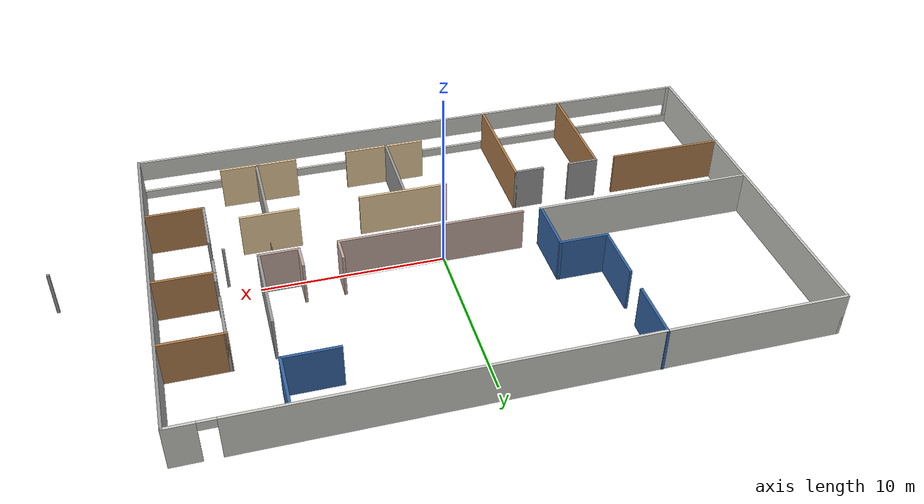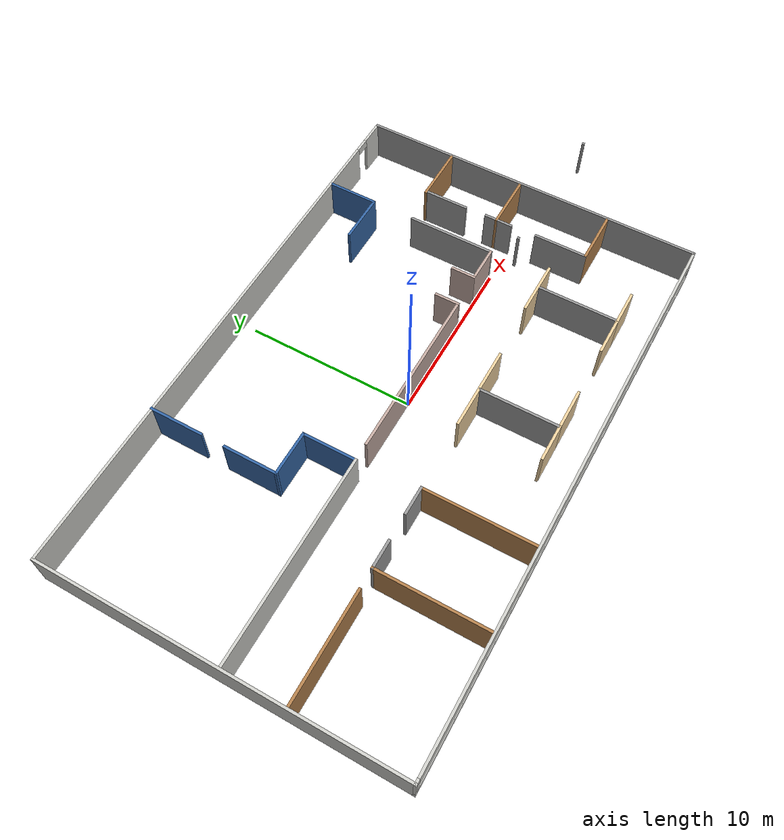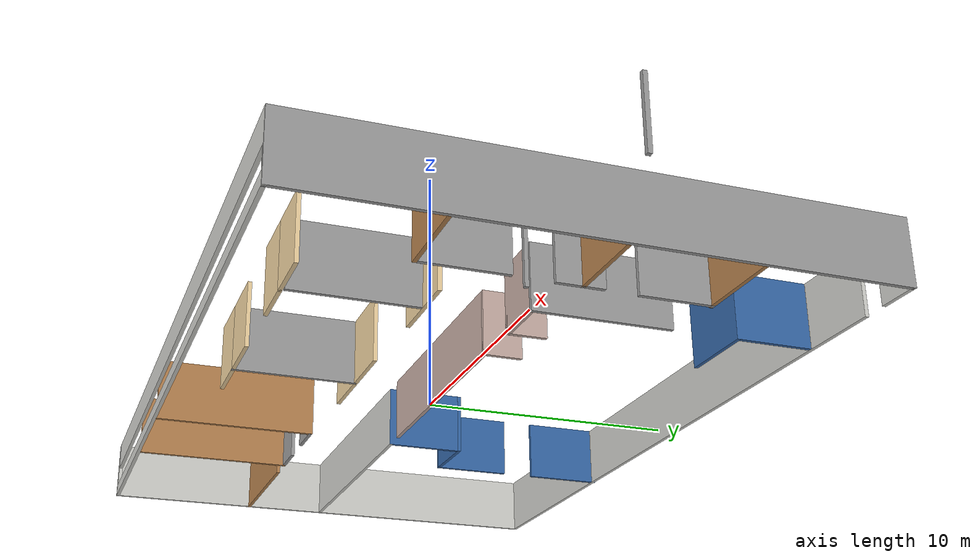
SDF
<?xml version='1.0'?>
<sdf version='1.6'>
  <model name='myworld2'>
    <pose frame=''>1.34917 0.407472 0 0 -0 0</pose>
    <link name='Wall_21'>
      <collision name='Wall_21_Collision'>
        <geometry>
          <box>
            <size>0.15 0.15 2.5</size>
          </box>
        </geometry>
        <pose frame=''>0 0 1.25 0 -0 0</pose>
      </collision>
      <visual name='Wall_21_Visual'>
        <pose frame=''>0 0 1.25 0 -0 0</pose>
        <geometry>
          <box>
            <size>0.15 0.15 2.5</size>
          </box>
        </geometry>
        <material>
          <script>
            <uri>file://media/materials/scripts/gazebo.material</uri>
            <name>Gazebo/Grey</name>
          </script>
          <ambient>1 1 1 1</ambient>
        </material>
        <meta>
          <layer>0</layer>
        </meta>
      </visual>
      <pose frame=''>18.9712 -1.42144 0 0 -0 0</pose>
    </link>
    <link name='Wall_29'>
      <collision name='Wall_29_Collision'>
        <geometry>
          <box>
            <size>0.15 0.15 2.5</size>
          </box>
        </geometry>
        <pose frame=''>0 0 1.25 0 -0 0</pose>
      </collision>
      <visual name='Wall_29_Visual'>
        <pose frame=''>0 0 1.25 0 -0 0</pose>
        <geometry>
          <box>
            <size>0.15 0.15 2.5</size>
          </box>
        </geometry>
        <material>
          <script>
            <uri>file://media/materials/scripts/gazebo.material</uri>
            <name>Gazebo/Grey</name>
          </script>
          <ambient>1 1 1 1</ambient>
        </material>
        <meta>
          <layer>0</layer>
        </meta>
      </visual>
      <pose frame=''>10.2577 -1.19451 0 0 -0 0</pose>
    </link>
    <link name='Wall_32'>
      <pose frame=''>-2.42121 10.4091 0 0 -0 0</pose>
      <visual name='Wall_32_Visual_0'>
        <pose frame=''>-1.23336 0 1.25 0 -0 0</pose>
        <geometry>
          <box>
            <size>30.7833 0.15 2.5</size>
          </box>
        </geometry>
        <material>
          <script>
            <uri>file://media/materials/scripts/gazebo.material</uri>
            <name>Gazebo/CeilingTiled</name>
          </script>
          <ambient>0.203922 0.396078 0.643137 1</ambient>
        </material>
        <meta>
          <layer>0</layer>
        </meta>
      </visual>
      <collision name='Wall_32_Collision_0'>
        <geometry>
          <box>
            <size>30.7833 0.15 2.5</size>
          </box>
        </geometry>
        <pose frame=''>-1.23336 0 1.25 0 -0 0</pose>
      </collision>
      <visual name='Wall_32_Visual_1'>
        <pose frame=''>15.8416 0 1.25 0 -0 0</pose>
        <geometry>
          <box>
            <size>1.56672 0.15 2.5</size>
          </box>
        </geometry>
        <material>
          <script>
            <uri>file://media/materials/scripts/gazebo.material</uri>
            <name>Gazebo/CeilingTiled</name>
          </script>
          <ambient>0.203922 0.396078 0.643137 1</ambient>
        </material>
        <meta>
          <layer>0</layer>
        </meta>
      </visual>
      <collision name='Wall_32_Collision_1'>
        <geometry>
          <box>
            <size>1.56672 0.15 2.5</size>
          </box>
        </geometry>
        <pose frame=''>15.8416 0 1.25 0 -0 0</pose>
      </collision>
      <visual name='Wall_32_Visual_2'>
        <pose frame=''>14.6083 0 2.25 0 -0 0</pose>
        <geometry>
          <box>
            <size>0.9 0.15 0.5</size>
          </box>
        </geometry>
        <material>
          <script>
            <uri>file://media/materials/scripts/gazebo.material</uri>
            <name>Gazebo/CeilingTiled</name>
          </script>
          <ambient>0.203922 0.396078 0.643137 1</ambient>
        </material>
        <meta>
          <layer>0</layer>
        </meta>
      </visual>
      <collision name='Wall_32_Collision_2'>
        <geometry>
          <box>
            <size>0.9 0.15 0.5</size>
          </box>
        </geometry>
        <pose frame=''>14.6083 0 2.25 0 -0 0</pose>
      </collision>
    </link>
    <link name='Wall_33'>
      <collision name='Wall_33_Collision'>
        <geometry>
          <box>
            <size>21 0.15 2.5</size>
          </box>
        </geometry>
        <pose frame=''>0 0 1.25 0 -0 0</pose>
      </collision>
      <visual name='Wall_33_Visual'>
        <pose frame=''>0 0 1.25 0 -0 0</pose>
        <geometry>
          <box>
            <size>21 0.15 2.5</size>
          </box>
        </geometry>
        <material>
          <script>
            <uri>file://media/materials/scripts/gazebo.material</uri>
            <name>Gazebo/Grey</name>
          </script>
          <ambient>1 1 1 1</ambient>
        </material>
        <meta>
          <layer>0</layer>
        </meta>
      </visual>
      <pose frame=''>14.1288 -0.015902 0 0 -0 -1.5708</pose>
    </link>
    <link name='Wall_34'>
      <pose frame=''>-2.42121 -10.4409 0 0 -0 3.14159</pose>
      <visual name='Wall_34_Visual_0'>
        <pose frame=''>-16.5864 0 1.25 0 -0 0</pose>
        <geometry>
          <box>
            <size>0.077133 0.15 2.5</size>
          </box>
        </geometry>
        <material>
          <script>
            <uri>file://media/materials/scripts/gazebo.material</uri>
            <name>Gazebo/CeilingTiled</name>
          </script>
          <ambient>1 1 1 1</ambient>
        </material>
        <meta>
          <layer>0</layer>
        </meta>
      </visual>
      <collision name='Wall_34_Collision_0'>
        <geometry>
          <box>
            <size>0.077133 0.15 2.5</size>
          </box>
        </geometry>
        <pose frame=''>-16.5864 0 1.25 0 -0 0</pose>
      </collision>
      <visual name='Wall_34_Visual_1'>
        <pose frame=''>0.038567 0 0.25 0 -0 0</pose>
        <geometry>
          <box>
            <size>33.1729 0.15 0.5</size>
          </box>
        </geometry>
        <material>
          <script>
            <uri>file://media/materials/scripts/gazebo.material</uri>
            <name>Gazebo/CeilingTiled</name>
          </script>
          <ambient>1 1 1 1</ambient>
        </material>
        <meta>
          <layer>0</layer>
        </meta>
      </visual>
      <collision name='Wall_34_Collision_1'>
        <geometry>
          <box>
            <size>33.1729 0.15 0.5</size>
          </box>
        </geometry>
        <pose frame=''>0.038567 0 0.25 0 -0 0</pose>
      </collision>
      <visual name='Wall_34_Visual_2'>
        <pose frame=''>16.4492 0 1.5 0 -0 0</pose>
        <geometry>
          <box>
            <size>0.35158 0.15 2</size>
          </box>
        </geometry>
        <material>
          <script>
            <uri>file://media/materials/scripts/gazebo.material</uri>
            <name>Gazebo/CeilingTiled</name>
          </script>
          <ambient>1 1 1 1</ambient>
        </material>
        <meta>
          <layer>0</layer>
        </meta>
      </visual>
      <collision name='Wall_34_Collision_2'>
        <geometry>
          <box>
            <size>0.35158 0.15 2</size>
          </box>
        </geometry>
        <pose frame=''>16.4492 0 1.5 0 -0 0</pose>
      </collision>
      <visual name='Wall_34_Visual_3'>
        <pose frame=''>-0.137223 0 1.9 0 -0 0</pose>
        <geometry>
          <box>
            <size>32.8213 0.15 1.2</size>
          </box>
        </geometry>
        <material>
          <script>
            <uri>file://media/materials/scripts/gazebo.material</uri>
            <name>Gazebo/CeilingTiled</name>
          </script>
          <ambient>1 1 1 1</ambient>
        </material>
        <meta>
          <layer>0</layer>
        </meta>
      </visual>
      <collision name='Wall_34_Collision_3'>
        <geometry>
          <box>
            <size>32.8213 0.15 1.2</size>
          </box>
        </geometry>
        <pose frame=''>-0.137223 0 1.9 0 -0 0</pose>
      </collision>
    </link>
    <link name='Wall_35'>
      <collision name='Wall_35_Collision'>
        <geometry>
          <box>
            <size>21 0.15 2.5</size>
          </box>
        </geometry>
        <pose frame=''>0 0 1.25 0 -0 0</pose>
      </collision>
      <visual name='Wall_35_Visual'>
        <pose frame=''>0 0 1.25 0 -0 0</pose>
        <geometry>
          <box>
            <size>21 0.15 2.5</size>
          </box>
        </geometry>
        <material>
          <script>
            <uri>file://media/materials/scripts/gazebo.material</uri>
            <name>Gazebo/CeilingTiled</name>
          </script>
          <ambient>1 1 1 1</ambient>
        </material>
        <meta>
          <layer>0</layer>
        </meta>
      </visual>
      <pose frame=''>-18.9712 -0.015902 0 0 -0 1.5708</pose>
    </link>
    <link name='Wall_38'>
      <collision name='Wall_38_Collision'>
        <geometry>
          <box>
            <size>6.5 0.15 2.5</size>
          </box>
        </geometry>
        <pose frame=''>0 0 1.25 0 -0 0</pose>
      </collision>
      <visual name='Wall_38_Visual'>
        <pose frame=''>0 0 1.25 0 -0 0</pose>
        <geometry>
          <box>
            <size>6.5 0.15 2.5</size>
          </box>
        </geometry>
        <material>
          <script>
            <uri>file://media/materials/scripts/gazebo.material</uri>
            <name>Gazebo/Wood</name>
          </script>
          <ambient>1 1 1 1</ambient>
        </material>
        <meta>
          <layer>0</layer>
        </meta>
      </visual>
      <pose frame=''>-15.7869 -3.95257 0 0 -0 0</pose>
    </link>
    <link name='Wall_40'>
      <collision name='Wall_40_Collision'>
        <geometry>
          <box>
            <size>1.75 0.15 2.5</size>
          </box>
        </geometry>
        <pose frame=''>0 0 1.25 0 -0 0</pose>
      </collision>
      <visual name='Wall_40_Visual'>
        <pose frame=''>0 0 1.25 0 -0 0</pose>
        <geometry>
          <box>
            <size>1.75 0.15 2.5</size>
          </box>
        </geometry>
        <material>
          <script>
            <uri>file://media/materials/scripts/gazebo.material</uri>
            <name>Gazebo/Grey</name>
          </script>
          <ambient>1 1 1 1</ambient>
        </material>
        <meta>
          <layer>0</layer>
        </meta>
      </visual>
      <pose frame=''>-10.5979 -3.95257 0 0 -0 0</pose>
    </link>
    <link name='Wall_42'>
      <collision name='Wall_42_Collision'>
        <geometry>
          <box>
            <size>1.75 0.15 2.5</size>
          </box>
        </geometry>
        <pose frame=''>0 0 1.25 0 -0 0</pose>
      </collision>
      <visual name='Wall_42_Visual'>
        <pose frame=''>0 0 1.25 0 -0 0</pose>
        <geometry>
          <box>
            <size>1.75 0.15 2.5</size>
          </box>
        </geometry>
        <material>
          <script>
            <uri>file://media/materials/scripts/gazebo.material</uri>
            <name>Gazebo/Grey</name>
          </script>
          <ambient>1 1 1 1</ambient>
        </material>
        <meta>
          <layer>0</layer>
        </meta>
      </visual>
      <pose frame=''>-7.34119 -3.95257 0 0 -0 0</pose>
    </link>
    <link name='Wall_44'>
      <collision name='Wall_44_Collision'>
        <geometry>
          <box>
            <size>6.5 0.15 2.5</size>
          </box>
        </geometry>
        <pose frame=''>0 0 1.25 0 -0 0</pose>
      </collision>
      <visual name='Wall_44_Visual'>
        <pose frame=''>0 0 1.25 0 -0 0</pose>
        <geometry>
          <box>
            <size>6.5 0.15 2.5</size>
          </box>
        </geometry>
        <material>
          <script>
            <uri>file://media/materials/scripts/gazebo.material</uri>
            <name>Gazebo/Wood</name>
          </script>
          <ambient>1 1 1 1</ambient>
        </material>
        <meta>
          <layer>0</layer>
        </meta>
      </visual>
      <pose frame=''>-6.54119 -7.12757 0 0 -0 -1.5708</pose>
    </link>
    <link name='Wall_46'>
      <collision name='Wall_46_Collision'>
        <geometry>
          <box>
            <size>6.5 0.15 2.5</size>
          </box>
        </geometry>
        <pose frame=''>0 0 1.25 0 -0 0</pose>
      </collision>
      <visual name='Wall_46_Visual'>
        <pose frame=''>0 0 1.25 0 -0 0</pose>
        <geometry>
          <box>
            <size>6.5 0.15 2.5</size>
          </box>
        </geometry>
        <material>
          <script>
            <uri>file://media/materials/scripts/gazebo.material</uri>
            <name>Gazebo/Wood</name>
          </script>
          <ambient>1 1 1 1</ambient>
        </material>
        <meta>
          <layer>0</layer>
        </meta>
      </visual>
      <pose frame=''>-11.3979 -7.12757 0 0 -0 -1.5708</pose>
    </link>
    <link name='Wall_48'>
      <collision name='Wall_48_Collision'>
        <geometry>
          <box>
            <size>12.25 0.15 2.5</size>
          </box>
        </geometry>
        <pose frame=''>0 0 1.25 0 -0 0</pose>
      </collision>
      <visual name='Wall_48_Visual'>
        <pose frame=''>0 0 1.25 0 -0 0</pose>
        <geometry>
          <box>
            <size>12.25 0.15 2.5</size>
          </box>
        </geometry>
        <material>
          <script>
            <uri>file://media/materials/scripts/gazebo.material</uri>
            <name>Gazebo/CeilingTiled</name>
          </script>
          <ambient>1 1 1 1</ambient>
        </material>
        <meta>
          <layer>0</layer>
        </meta>
      </visual>
      <pose frame=''>-12.8594 -0.328155 0 0 -0 0</pose>
    </link>
    <link name='Wall_49'>
      <collision name='Wall_49_Collision'>
        <geometry>
          <box>
            <size>3.25 0.15 2.5</size>
          </box>
        </geometry>
        <pose frame=''>0 0 1.25 0 -0 0</pose>
      </collision>
      <visual name='Wall_49_Visual'>
        <pose frame=''>0 0 1.25 0 -0 0</pose>
        <geometry>
          <box>
            <size>3.25 0.15 2.5</size>
          </box>
        </geometry>
        <material>
          <script>
            <uri>file://media/materials/scripts/gazebo.material</uri>
            <name>Gazebo/Grey</name>
          </script>
          <ambient>0.203922 0.396078 0.643137 1</ambient>
        </material>
        <meta>
          <layer>0</layer>
        </meta>
      </visual>
      <pose frame=''>-6.80939 1.22185 0 0 -0 1.5708</pose>
    </link>
    <link name='Wall_50'>
      <collision name='Wall_50_Collision'>
        <geometry>
          <box>
            <size>2.75 0.15 2.5</size>
          </box>
        </geometry>
        <pose frame=''>0 0 1.25 0 -0 0</pose>
      </collision>
      <visual name='Wall_50_Visual'>
        <pose frame=''>0 0 1.25 0 -0 0</pose>
        <geometry>
          <box>
            <size>2.75 0.15 2.5</size>
          </box>
        </geometry>
        <material>
          <script>
            <uri>file://media/materials/scripts/gazebo.material</uri>
            <name>Gazebo/Grey</name>
          </script>
          <ambient>0.203922 0.396078 0.643137 1</ambient>
        </material>
        <meta>
          <layer>0</layer>
        </meta>
      </visual>
      <pose frame=''>-8.10939 2.77184 0 0 -0 3.14159</pose>
    </link>
    <link name='Wall_53'>
      <collision name='Wall_53_Collision'>
        <geometry>
          <box>
            <size>3.25 0.15 2.5</size>
          </box>
        </geometry>
        <pose frame=''>0 0 1.25 0 -0 0</pose>
      </collision>
      <visual name='Wall_53_Visual'>
        <pose frame=''>0 0 1.25 0 -0 0</pose>
        <geometry>
          <box>
            <size>3.25 0.15 2.5</size>
          </box>
        </geometry>
        <material>
          <script>
            <uri>file://media/materials/scripts/gazebo.material</uri>
            <name>Gazebo/Grey</name>
          </script>
          <ambient>0.203922 0.396078 0.643137 1</ambient>
        </material>
        <meta>
          <layer>0</layer>
        </meta>
      </visual>
      <pose frame=''>-9.40939 4.32184 0 0 -0 1.5708</pose>
    </link>
    <link name='Wall_55'>
      <collision name='Wall_55_Collision'>
        <geometry>
          <box>
            <size>3.25 0.15 2.5</size>
          </box>
        </geometry>
        <pose frame=''>0 0 1.25 0 -0 0</pose>
      </collision>
      <visual name='Wall_55_Visual'>
        <pose frame=''>0 0 1.25 0 -0 0</pose>
        <geometry>
          <box>
            <size>3.25 0.15 2.5</size>
          </box>
        </geometry>
        <material>
          <script>
            <uri>file://media/materials/scripts/gazebo.material</uri>
            <name>Gazebo/Grey</name>
          </script>
          <ambient>0.203922 0.396078 0.643137 1</ambient>
        </material>
        <meta>
          <layer>0</layer>
        </meta>
      </visual>
      <pose frame=''>-9.40186 8.8909 0 0 -0 1.5708</pose>
    </link>
    <link name='Wall_57'>
      <collision name='Wall_57_Collision'>
        <geometry>
          <box>
            <size>10.25 0.15 2.5</size>
          </box>
        </geometry>
        <pose frame=''>0 0 1.25 0 -0 0</pose>
      </collision>
      <visual name='Wall_57_Visual'>
        <pose frame=''>0 0 1.25 0 -0 0</pose>
        <geometry>
          <box>
            <size>10.25 0.15 2.5</size>
          </box>
        </geometry>
        <material>
          <script>
            <uri>file://media/materials/scripts/gazebo.material</uri>
            <name>Gazebo/Grey</name>
          </script>
          <ambient>0.760784 0.662745 0.627451 1</ambient>
        </material>
        <meta>
          <layer>0</layer>
        </meta>
      </visual>
      <pose frame=''>-0.674915 -0.328155 0 0 -0 0</pose>
    </link>
    <link name='Wall_58'>
      <collision name='Wall_58_Collision'>
        <geometry>
          <box>
            <size>1.5 0.15 2.5</size>
          </box>
        </geometry>
        <pose frame=''>0 0 1.25 0 -0 0</pose>
      </collision>
      <visual name='Wall_58_Visual'>
        <pose frame=''>0 0 1.25 0 -0 0</pose>
        <geometry>
          <box>
            <size>1.5 0.15 2.5</size>
          </box>
        </geometry>
        <material>
          <script>
            <uri>file://media/materials/scripts/gazebo.material</uri>
            <name>Gazebo/Grey</name>
          </script>
          <ambient>0.760784 0.662745 0.627451 1</ambient>
        </material>
        <meta>
          <layer>0</layer>
        </meta>
      </visual>
      <pose frame=''>4.37509 0.346845 0 0 -0 1.5708</pose>
    </link>
    <link name='Wall_60'>
      <collision name='Wall_60_Collision'>
        <geometry>
          <box>
            <size>1.5 0.15 2.5</size>
          </box>
        </geometry>
        <pose frame=''>0 0 1.25 0 -0 0</pose>
      </collision>
      <visual name='Wall_60_Visual'>
        <pose frame=''>0 0 1.25 0 -0 0</pose>
        <geometry>
          <box>
            <size>1.5 0.15 2.5</size>
          </box>
        </geometry>
        <material>
          <script>
            <uri>file://media/materials/scripts/gazebo.material</uri>
            <name>Gazebo/Grey</name>
          </script>
          <ambient>0.760784 0.662745 0.627451 1</ambient>
        </material>
        <meta>
          <layer>0</layer>
        </meta>
      </visual>
      <pose frame=''>6.46153 0.415095 0 0 -0 -1.5708</pose>
    </link>
    <link name='Wall_61'>
      <collision name='Wall_61_Collision'>
        <geometry>
          <box>
            <size>2.25 0.15 2.5</size>
          </box>
        </geometry>
        <pose frame=''>0 0 1.25 0 -0 0</pose>
      </collision>
      <visual name='Wall_61_Visual'>
        <pose frame=''>0 0 1.25 0 -0 0</pose>
        <geometry>
          <box>
            <size>2.25 0.15 2.5</size>
          </box>
        </geometry>
        <material>
          <script>
            <uri>file://media/materials/scripts/gazebo.material</uri>
            <name>Gazebo/Grey</name>
          </script>
          <ambient>0.760784 0.662745 0.627451 1</ambient>
        </material>
        <meta>
          <layer>0</layer>
        </meta>
      </visual>
      <pose frame=''>7.51154 -0.259905 0 0 -0 0</pose>
    </link>
    <link name='Wall_62'>
      <collision name='Wall_62_Collision'>
        <geometry>
          <box>
            <size>5.25 0.15 2.5</size>
          </box>
        </geometry>
        <pose frame=''>0 0 1.25 0 -0 0</pose>
      </collision>
      <visual name='Wall_62_Visual'>
        <pose frame=''>0 0 1.25 0 -0 0</pose>
        <geometry>
          <box>
            <size>5.25 0.15 2.5</size>
          </box>
        </geometry>
        <material>
          <script>
            <uri>file://media/materials/scripts/gazebo.material</uri>
            <name>Gazebo/Grey</name>
          </script>
          <ambient>1 1 1 1</ambient>
        </material>
        <meta>
          <layer>0</layer>
        </meta>
      </visual>
      <pose frame=''>8.56154 2.29009 0 0 -0 1.5708</pose>
    </link>
    <link name='Wall_64'>
      <collision name='Wall_64_Collision'>
        <geometry>
          <box>
            <size>3 0.15 2.5</size>
          </box>
        </geometry>
        <pose frame=''>0 0 1.25 0 -0 0</pose>
      </collision>
      <visual name='Wall_64_Visual'>
        <pose frame=''>0 0 1.25 0 -0 0</pose>
        <geometry>
          <box>
            <size>3 0.15 2.5</size>
          </box>
        </geometry>
        <material>
          <script>
            <uri>file://media/materials/scripts/gazebo.material</uri>
            <name>Gazebo/Grey</name>
          </script>
          <ambient>0.203922 0.396078 0.643137 1</ambient>
        </material>
        <meta>
          <layer>0</layer>
        </meta>
      </visual>
      <pose frame=''>7.13765 7.44596 0 0 -0 3.14159</pose>
    </link>
    <link name='Wall_66'>
      <collision name='Wall_66_Collision'>
        <geometry>
          <box>
            <size>3 0.15 2.5</size>
          </box>
        </geometry>
        <pose frame=''>0 0 1.25 0 -0 0</pose>
      </collision>
      <visual name='Wall_66_Visual'>
        <pose frame=''>0 0 1.25 0 -0 0</pose>
        <geometry>
          <box>
            <size>3 0.15 2.5</size>
          </box>
        </geometry>
        <material>
          <script>
            <uri>file://media/materials/scripts/gazebo.material</uri>
            <name>Gazebo/Grey</name>
          </script>
          <ambient>0.203922 0.396078 0.643137 1</ambient>
        </material>
        <meta>
          <layer>0</layer>
        </meta>
      </visual>
      <pose frame=''>8.56265 8.87096 0 0 -0 1.5708</pose>
    </link>
    <link name='Wall_68'>
      <collision name='Wall_68_Collision'>
        <geometry>
          <box>
            <size>2.75 0.15 2.5</size>
          </box>
        </geometry>
        <pose frame=''>0 0 1.25 0 -0 0</pose>
      </collision>
      <visual name='Wall_68_Visual'>
        <pose frame=''>0 0 1.25 0 -0 0</pose>
        <geometry>
          <box>
            <size>2.75 0.15 2.5</size>
          </box>
        </geometry>
        <material>
          <script>
            <uri>file://media/materials/scripts/gazebo.material</uri>
            <name>Gazebo/Grey</name>
          </script>
          <ambient>1 1 1 1</ambient>
        </material>
        <meta>
          <layer>0</layer>
        </meta>
      </visual>
      <pose frame=''>10.8213 3.83474 0 0 -0 -1.5708</pose>
    </link>
    <link name='Wall_70'>
      <collision name='Wall_70_Collision'>
        <geometry>
          <box>
            <size>3.5 0.15 2.5</size>
          </box>
        </geometry>
        <pose frame=''>0 0 1.25 0 -0 0</pose>
      </collision>
      <visual name='Wall_70_Visual'>
        <pose frame=''>0 0 1.25 0 -0 0</pose>
        <geometry>
          <box>
            <size>3.5 0.15 2.5</size>
          </box>
        </geometry>
        <material>
          <script>
            <uri>file://media/materials/scripts/gazebo.material</uri>
            <name>Gazebo/Wood</name>
          </script>
          <ambient>1 1 1 1</ambient>
        </material>
        <meta>
          <layer>0</layer>
        </meta>
      </visual>
      <pose frame=''>12.4438 5.13474 0 0 -0 0</pose>
    </link>
    <link name='Wall_72'>
      <collision name='Wall_72_Collision'>
        <geometry>
          <box>
            <size>1.75 0.15 2.5</size>
          </box>
        </geometry>
        <pose frame=''>0 0 1.25 0 -0 0</pose>
      </collision>
      <visual name='Wall_72_Visual'>
        <pose frame=''>0 0 1.25 0 -0 0</pose>
        <geometry>
          <box>
            <size>1.75 0.15 2.5</size>
          </box>
        </geometry>
        <material>
          <script>
            <uri>file://media/materials/scripts/gazebo.material</uri>
            <name>Gazebo/Grey</name>
          </script>
          <ambient>1 1 1 1</ambient>
        </material>
        <meta>
          <layer>0</layer>
        </meta>
      </visual>
      <pose frame=''>10.8739 0.395151 0 0 -0 -1.5708</pose>
    </link>
    <link name='Wall_74'>
      <collision name='Wall_74_Collision'>
        <geometry>
          <box>
            <size>3.25 0.15 2.5</size>
          </box>
        </geometry>
        <pose frame=''>0 0 1.25 0 -0 0</pose>
      </collision>
      <visual name='Wall_74_Visual'>
        <pose frame=''>0 0 1.25 0 -0 0</pose>
        <geometry>
          <box>
            <size>3.25 0.15 2.5</size>
          </box>
        </geometry>
        <material>
          <script>
            <uri>file://media/materials/scripts/gazebo.material</uri>
            <name>Gazebo/Grey</name>
          </script>
          <ambient>1 1 1 1</ambient>
        </material>
        <meta>
          <layer>0</layer>
        </meta>
      </visual>
      <pose frame=''>10.9264 -3.55904 0 0 -0 -1.5708</pose>
    </link>
    <link name='Wall_75'>
      <collision name='Wall_75_Collision'>
        <geometry>
          <box>
            <size>3.25 0.15 2.5</size>
          </box>
        </geometry>
        <pose frame=''>0 0 1.25 0 -0 0</pose>
      </collision>
      <visual name='Wall_75_Visual'>
        <pose frame=''>0 0 1.25 0 -0 0</pose>
        <geometry>
          <box>
            <size>3.25 0.15 2.5</size>
          </box>
        </geometry>
        <material>
          <script>
            <uri>file://media/materials/scripts/gazebo.material</uri>
            <name>Gazebo/Wood</name>
          </script>
          <ambient>1 1 1 1</ambient>
        </material>
        <meta>
          <layer>0</layer>
        </meta>
      </visual>
      <pose frame=''>12.4764 -5.10905 0 0 -0 0</pose>
    </link>
    <link name='Wall_77'>
      <collision name='Wall_77_Collision'>
        <geometry>
          <box>
            <size>3.25 0.15 2.5</size>
          </box>
        </geometry>
        <pose frame=''>0 0 1.25 0 -0 0</pose>
      </collision>
      <visual name='Wall_77_Visual'>
        <pose frame=''>0 0 1.25 0 -0 0</pose>
        <geometry>
          <box>
            <size>3.25 0.15 2.5</size>
          </box>
        </geometry>
        <material>
          <script>
            <uri>file://media/materials/scripts/gazebo.material</uri>
            <name>Gazebo/Wood</name>
          </script>
          <ambient>1 1 1 1</ambient>
        </material>
        <meta>
          <layer>0</layer>
        </meta>
      </visual>
      <pose frame=''>12.4239 0.512289 0 0 -0 0</pose>
    </link>
    <link name='Wall_79'>
      <collision name='Wall_79_Collision'>
        <geometry>
          <box>
            <size>5 0.15 2.5</size>
          </box>
        </geometry>
        <pose frame=''>0 0 1.25 0 -0 0</pose>
      </collision>
      <visual name='Wall_79_Visual'>
        <pose frame=''>0 0 1.25 0 -0 0</pose>
        <geometry>
          <box>
            <size>5 0.15 2.5</size>
          </box>
        </geometry>
        <material>
          <script>
            <uri>file://media/materials/scripts/gazebo.material</uri>
            <name>Gazebo/Grey</name>
          </script>
          <ambient>0.921569 0.807843 0.615686 1</ambient>
        </material>
        <meta>
          <layer>0</layer>
        </meta>
      </visual>
      <pose frame=''>0.065808 -3.84752 0 0 -0 0</pose>
    </link>
    <link name='Wall_81'>
      <collision name='Wall_81_Collision'>
        <geometry>
          <box>
            <size>4.75 0.15 2.5</size>
          </box>
        </geometry>
        <pose frame=''>0 0 1.25 0 -0 0</pose>
      </collision>
      <visual name='Wall_81_Visual'>
        <pose frame=''>0 0 1.25 0 -0 0</pose>
        <geometry>
          <box>
            <size>4.75 0.15 2.5</size>
          </box>
        </geometry>
        <material>
          <script>
            <uri>file://media/materials/scripts/gazebo.material</uri>
            <name>Gazebo/Grey</name>
          </script>
          <ambient>1 1 1 1</ambient>
        </material>
        <meta>
          <layer>0</layer>
        </meta>
      </visual>
      <pose frame=''>0.000616 -6.20005 0 0 -0 -1.5708</pose>
    </link>
    <link name='Wall_82'>
      <collision name='Wall_82_Collision'>
        <geometry>
          <box>
            <size>2.5 0.15 2.5</size>
          </box>
        </geometry>
        <pose frame=''>0 0 1.25 0 -0 0</pose>
      </collision>
      <visual name='Wall_82_Visual'>
        <pose frame=''>0 0 1.25 0 -0 0</pose>
        <geometry>
          <box>
            <size>2.5 0.15 2.5</size>
          </box>
        </geometry>
        <material>
          <script>
            <uri>file://media/materials/scripts/gazebo.material</uri>
            <name>Gazebo/Grey</name>
          </script>
          <ambient>0.921569 0.807843 0.615686 1</ambient>
        </material>
        <meta>
          <layer>0</layer>
        </meta>
      </visual>
      <pose frame=''>1.17562 -8.50005 0 0 -0 0</pose>
    </link>
    <link name='Wall_84'>
      <collision name='Wall_84_Collision'>
        <geometry>
          <box>
            <size>2.25 0.15 2.5</size>
          </box>
        </geometry>
        <pose frame=''>0 0 1.25 0 -0 0</pose>
      </collision>
      <visual name='Wall_84_Visual'>
        <pose frame=''>0 0 1.25 0 -0 0</pose>
        <geometry>
          <box>
            <size>2.25 0.15 2.5</size>
          </box>
        </geometry>
        <material>
          <script>
            <uri>file://media/materials/scripts/gazebo.material</uri>
            <name>Gazebo/Grey</name>
          </script>
          <ambient>0.921569 0.807843 0.615686 1</ambient>
        </material>
        <meta>
          <layer>0</layer>
        </meta>
      </visual>
      <pose frame=''>-1.04938 -8.50005 0 0 -0 3.14159</pose>
    </link>
    <link name='Wall_86'>
      <collision name='Wall_86_Collision'>
        <geometry>
          <box>
            <size>3.25 0.15 2.5</size>
          </box>
        </geometry>
        <pose frame=''>0 0 1.25 0 -0 0</pose>
      </collision>
      <visual name='Wall_86_Visual'>
        <pose frame=''>0 0 1.25 0 -0 0</pose>
        <geometry>
          <box>
            <size>3.25 0.15 2.5</size>
          </box>
        </geometry>
        <material>
          <script>
            <uri>file://media/materials/scripts/gazebo.material</uri>
            <name>Gazebo/Grey</name>
          </script>
          <ambient>0.921569 0.807843 0.615686 1</ambient>
        </material>
        <meta>
          <layer>0</layer>
        </meta>
      </visual>
      <pose frame=''>7.53878 -3.68994 0 0 -0 0</pose>
    </link>
    <link name='Wall_88'>
      <collision name='Wall_88_Collision'>
        <geometry>
          <box>
            <size>4.75 0.15 2.5</size>
          </box>
        </geometry>
        <pose frame=''>0 0 1.25 0 -0 0</pose>
      </collision>
      <visual name='Wall_88_Visual'>
        <pose frame=''>0 0 1.25 0 -0 0</pose>
        <geometry>
          <box>
            <size>4.75 0.15 2.5</size>
          </box>
        </geometry>
        <material>
          <script>
            <uri>file://media/materials/scripts/gazebo.material</uri>
            <name>Gazebo/Grey</name>
          </script>
          <ambient>1 1 1 1</ambient>
        </material>
        <meta>
          <layer>0</layer>
        </meta>
      </visual>
      <pose frame=''>7.61715 -5.98994 0 0 -0 -1.5708</pose>
    </link>
    <link name='Wall_90'>
      <collision name='Wall_90_Collision'>
        <geometry>
          <box>
            <size>2.25 0.15 2.5</size>
          </box>
        </geometry>
        <pose frame=''>0 0 1.25 0 -0 0</pose>
      </collision>
      <visual name='Wall_90_Visual'>
        <pose frame=''>0 0 1.25 0 -0 0</pose>
        <geometry>
          <box>
            <size>2.25 0.15 2.5</size>
          </box>
        </geometry>
        <material>
          <script>
            <uri>file://media/materials/scripts/gazebo.material</uri>
            <name>Gazebo/Grey</name>
          </script>
          <ambient>0.921569 0.807843 0.615686 1</ambient>
        </material>
        <meta>
          <layer>0</layer>
        </meta>
      </visual>
      <pose frame=''>6.46098 -8.46997 0 0 -0 0</pose>
    </link>
    <link name='Wall_91'>
      <collision name='Wall_91_Collision'>
        <geometry>
          <box>
            <size>2.25 0.15 2.5</size>
          </box>
        </geometry>
        <pose frame=''>0 0 1.25 0 -0 0</pose>
      </collision>
      <visual name='Wall_91_Visual'>
        <pose frame=''>0 0 1.25 0 -0 0</pose>
        <geometry>
          <box>
            <size>2.25 0.15 2.5</size>
          </box>
        </geometry>
        <material>
          <script>
            <uri>file://media/materials/scripts/gazebo.material</uri>
            <name>Gazebo/Grey</name>
          </script>
          <ambient>0.921569 0.807843 0.615686 1</ambient>
        </material>
        <meta>
          <layer>0</layer>
        </meta>
      </visual>
      <pose frame=''>8.56098 -8.46997 0 0 -0 0</pose>
    </link>
    <static>1</static>
  </model>
</sdf>
